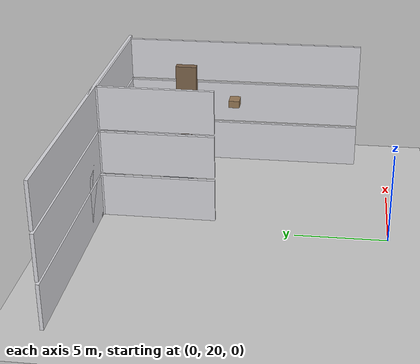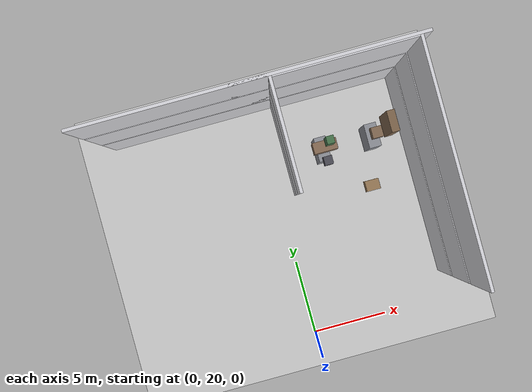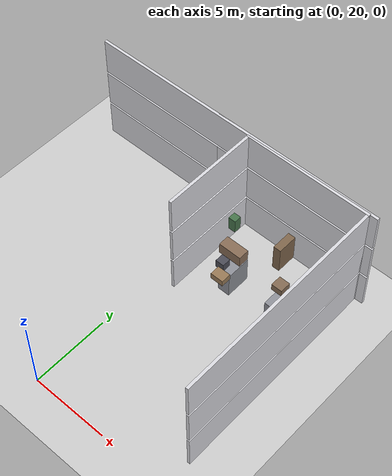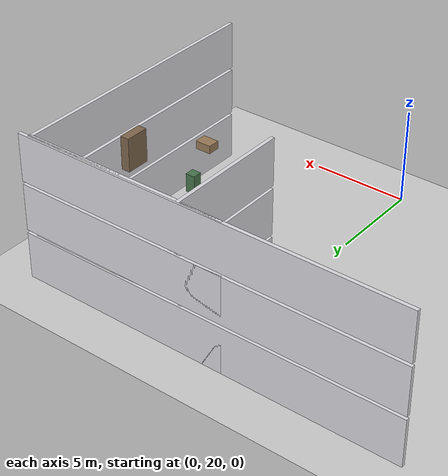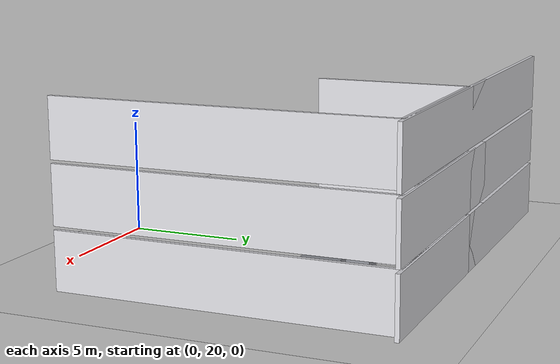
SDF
<sdf version="1.7">
 <world name="generated_world">
  <include><uri>model://sun</uri></include>
  <include><uri>model://ground_plane</uri></include>
  <model name="generated_building">
   <static>true</static>
   <link name="exterior_north_floor_0">
    <pose>0.0000 35.9100 1.2250 0.0000 0.0000 0.0000</pose>
    <collision name="exterior_north_floor_0_collision">
     <geometry><box><size>20.0000 0.1800 2.4500</size></box></geometry>
    </collision>
    <visual name="exterior_north_floor_0_visual">
     <geometry><box><size>20.0000 0.1800 2.4500</size></box></geometry>
     <material><ambient>0.86 0.86 0.88 1</ambient><diffuse>0.86 0.86 0.88 1</diffuse></material>
    </visual>
    <gravity>false</gravity>
   </link>
   <link name="north_end_wall_floor_0">
    <pose>0.0000 35.9100 1.2250 0.0000 0.0000 0.0000</pose>
    <collision name="north_end_wall_floor_0_collision">
     <geometry><box><size>2.2000 0.1800 2.4500</size></box></geometry>
    </collision>
    <visual name="north_end_wall_floor_0_visual">
     <geometry><box><size>2.2000 0.1800 2.4500</size></box></geometry>
     <material><ambient>0.86 0.86 0.88 1</ambient><diffuse>0.86 0.86 0.88 1</diffuse></material>
    </visual>
    <gravity>false</gravity>
   </link>
   <link name="floor_0_room_3_corridor_wall_upper">
    <pose>1.1900 32.7025 1.2250 0.0000 0.0000 0.0000</pose>
    <collision name="floor_0_room_3_corridor_wall_upper_collision">
     <geometry><box><size>0.1800 6.4150 2.4500</size></box></geometry>
    </collision>
    <visual name="floor_0_room_3_corridor_wall_upper_visual">
     <geometry><box><size>0.1800 6.4150 2.4500</size></box></geometry>
     <material><ambient>0.86 0.86 0.88 1</ambient><diffuse>0.86 0.86 0.88 1</diffuse></material>
    </visual>
    <gravity>false</gravity>
   </link>
   <link name="floor_0_room_3_east_wall">
    <pose>9.4100 28.8950 1.2250 0.0000 0.0000 0.0000</pose>
    <collision name="floor_0_room_3_east_wall_collision">
     <geometry><box><size>0.1800 14.0300 2.4500</size></box></geometry>
    </collision>
    <visual name="floor_0_room_3_east_wall_visual">
     <geometry><box><size>0.1800 14.0300 2.4500</size></box></geometry>
     <material><ambient>0.86 0.86 0.88 1</ambient><diffuse>0.86 0.86 0.88 1</diffuse></material>
    </visual>
    <gravity>false</gravity>
   </link>
   <link name="floor_0_room_3_north_wall">
    <pose>5.3000 35.8200 1.2250 0.0000 0.0000 0.0000</pose>
    <collision name="floor_0_room_3_north_wall_collision">
     <geometry><box><size>8.4000 0.1800 2.4500</size></box></geometry>
    </collision>
    <visual name="floor_0_room_3_north_wall_visual">
     <geometry><box><size>8.4000 0.1800 2.4500</size></box></geometry>
     <material><ambient>0.86 0.86 0.88 1</ambient><diffuse>0.86 0.86 0.88 1</diffuse></material>
    </visual>
    <gravity>false</gravity>
   </link>
   <link name="floor_0_room_3_rack_a">
    <pose>3.6000 31.9525 0.9000 0.0000 0.0000 0.0000</pose>
    <collision name="floor_0_room_3_rack_a_collision">
     <geometry><box><size>0.8000 1.6000 1.8000</size></box></geometry>
    </collision>
    <visual name="floor_0_room_3_rack_a_visual">
     <geometry><box><size>0.8000 1.6000 1.8000</size></box></geometry>
     <material><ambient>0.56 0.57 0.60 1</ambient><diffuse>0.56 0.57 0.60 1</diffuse></material>
    </visual>
    <gravity>false</gravity>
   </link>
   <link name="floor_0_room_3_rack_b">
    <pose>7.0000 31.9525 0.9000 0.0000 0.0000 0.0000</pose>
    <collision name="floor_0_room_3_rack_b_collision">
     <geometry><box><size>0.8000 1.6000 1.8000</size></box></geometry>
    </collision>
    <visual name="floor_0_room_3_rack_b_visual">
     <geometry><box><size>0.8000 1.6000 1.8000</size></box></geometry>
     <material><ambient>0.56 0.57 0.60 1</ambient><diffuse>0.56 0.57 0.60 1</diffuse></material>
    </visual>
    <gravity>false</gravity>
   </link>
   <link name="exterior_north_floor_1">
    <pose>0.0000 35.9100 3.8250 0.0000 0.0000 0.0000</pose>
    <collision name="exterior_north_floor_1_collision">
     <geometry><box><size>20.0000 0.1800 2.4500</size></box></geometry>
    </collision>
    <visual name="exterior_north_floor_1_visual">
     <geometry><box><size>20.0000 0.1800 2.4500</size></box></geometry>
     <material><ambient>0.86 0.86 0.88 1</ambient><diffuse>0.86 0.86 0.88 1</diffuse></material>
    </visual>
    <gravity>false</gravity>
   </link>
   <link name="north_end_wall_floor_1">
    <pose>0.0000 35.9100 3.8250 0.0000 0.0000 0.0000</pose>
    <collision name="north_end_wall_floor_1_collision">
     <geometry><box><size>2.2000 0.1800 2.4500</size></box></geometry>
    </collision>
    <visual name="north_end_wall_floor_1_visual">
     <geometry><box><size>2.2000 0.1800 2.4500</size></box></geometry>
     <material><ambient>0.86 0.86 0.88 1</ambient><diffuse>0.86 0.86 0.88 1</diffuse></material>
    </visual>
    <gravity>false</gravity>
   </link>
   <link name="floor_1_room_3_corridor_wall_upper">
    <pose>1.1900 32.7025 3.8250 0.0000 0.0000 0.0000</pose>
    <collision name="floor_1_room_3_corridor_wall_upper_collision">
     <geometry><box><size>0.1800 6.4150 2.4500</size></box></geometry>
    </collision>
    <visual name="floor_1_room_3_corridor_wall_upper_visual">
     <geometry><box><size>0.1800 6.4150 2.4500</size></box></geometry>
     <material><ambient>0.86 0.86 0.88 1</ambient><diffuse>0.86 0.86 0.88 1</diffuse></material>
    </visual>
    <gravity>false</gravity>
   </link>
   <link name="floor_1_room_3_east_wall">
    <pose>9.4100 28.8950 3.8250 0.0000 0.0000 0.0000</pose>
    <collision name="floor_1_room_3_east_wall_collision">
     <geometry><box><size>0.1800 14.0300 2.4500</size></box></geometry>
    </collision>
    <visual name="floor_1_room_3_east_wall_visual">
     <geometry><box><size>0.1800 14.0300 2.4500</size></box></geometry>
     <material><ambient>0.86 0.86 0.88 1</ambient><diffuse>0.86 0.86 0.88 1</diffuse></material>
    </visual>
    <gravity>false</gravity>
   </link>
   <link name="floor_1_room_3_north_wall">
    <pose>5.3000 35.8200 3.8250 0.0000 0.0000 0.0000</pose>
    <collision name="floor_1_room_3_north_wall_collision">
     <geometry><box><size>8.4000 0.1800 2.4500</size></box></geometry>
    </collision>
    <visual name="floor_1_room_3_north_wall_visual">
     <geometry><box><size>8.4000 0.1800 2.4500</size></box></geometry>
     <material><ambient>0.86 0.86 0.88 1</ambient><diffuse>0.86 0.86 0.88 1</diffuse></material>
    </visual>
    <gravity>false</gravity>
   </link>
   <link name="floor_1_room_3_desk">
    <pose>3.6000 31.9525 3.0500 0.0000 0.0000 0.0000</pose>
    <collision name="floor_1_room_3_desk_collision">
     <geometry><box><size>1.5000 0.7000 0.7500</size></box></geometry>
    </collision>
    <visual name="floor_1_room_3_desk_visual">
     <geometry><box><size>1.5000 0.7000 0.7500</size></box></geometry>
     <material><ambient>0.54 0.43 0.34 1</ambient><diffuse>0.54 0.43 0.34 1</diffuse></material>
    </visual>
    <gravity>false</gravity>
   </link>
   <link name="floor_1_room_3_chair">
    <pose>3.6000 31.0525 2.8800 0.0000 0.0000 0.0000</pose>
    <collision name="floor_1_room_3_chair_collision">
     <geometry><box><size>0.5500 0.5500 0.5500</size></box></geometry>
    </collision>
    <visual name="floor_1_room_3_chair_visual">
     <geometry><box><size>0.5500 0.5500 0.5500</size></box></geometry>
     <material><ambient>0.30 0.30 0.34 1</ambient><diffuse>0.30 0.30 0.34 1</diffuse></material>
    </visual>
    <gravity>false</gravity>
   </link>
   <link name="floor_1_room_3_side_table">
    <pose>7.0000 31.9525 2.9200 0.0000 0.0000 0.0000</pose>
    <collision name="floor_1_room_3_side_table_collision">
     <geometry><box><size>0.7000 0.7000 0.4500</size></box></geometry>
    </collision>
    <visual name="floor_1_room_3_side_table_visual">
     <geometry><box><size>0.7000 0.7000 0.4500</size></box></geometry>
     <material><ambient>0.52 0.42 0.33 1</ambient><diffuse>0.52 0.42 0.33 1</diffuse></material>
    </visual>
    <gravity>false</gravity>
   </link>
   <link name="exterior_north_floor_2">
    <pose>0.0000 35.9100 6.4250 0.0000 0.0000 0.0000</pose>
    <collision name="exterior_north_floor_2_collision">
     <geometry><box><size>20.0000 0.1800 2.4500</size></box></geometry>
    </collision>
    <visual name="exterior_north_floor_2_visual">
     <geometry><box><size>20.0000 0.1800 2.4500</size></box></geometry>
     <material><ambient>0.86 0.86 0.88 1</ambient><diffuse>0.86 0.86 0.88 1</diffuse></material>
    </visual>
    <gravity>false</gravity>
   </link>
   <link name="north_end_wall_floor_2">
    <pose>0.0000 35.9100 6.4250 0.0000 0.0000 0.0000</pose>
    <collision name="north_end_wall_floor_2_collision">
     <geometry><box><size>2.2000 0.1800 2.4500</size></box></geometry>
    </collision>
    <visual name="north_end_wall_floor_2_visual">
     <geometry><box><size>2.2000 0.1800 2.4500</size></box></geometry>
     <material><ambient>0.86 0.86 0.88 1</ambient><diffuse>0.86 0.86 0.88 1</diffuse></material>
    </visual>
    <gravity>false</gravity>
   </link>
   <link name="floor_2_room_3_corridor_wall_upper">
    <pose>1.1900 32.7025 6.4250 0.0000 0.0000 0.0000</pose>
    <collision name="floor_2_room_3_corridor_wall_upper_collision">
     <geometry><box><size>0.1800 6.4150 2.4500</size></box></geometry>
    </collision>
    <visual name="floor_2_room_3_corridor_wall_upper_visual">
     <geometry><box><size>0.1800 6.4150 2.4500</size></box></geometry>
     <material><ambient>0.86 0.86 0.88 1</ambient><diffuse>0.86 0.86 0.88 1</diffuse></material>
    </visual>
    <gravity>false</gravity>
   </link>
   <link name="floor_2_room_3_east_wall">
    <pose>9.4100 28.8950 6.4250 0.0000 0.0000 0.0000</pose>
    <collision name="floor_2_room_3_east_wall_collision">
     <geometry><box><size>0.1800 14.0300 2.4500</size></box></geometry>
    </collision>
    <visual name="floor_2_room_3_east_wall_visual">
     <geometry><box><size>0.1800 14.0300 2.4500</size></box></geometry>
     <material><ambient>0.86 0.86 0.88 1</ambient><diffuse>0.86 0.86 0.88 1</diffuse></material>
    </visual>
    <gravity>false</gravity>
   </link>
   <link name="floor_2_room_3_north_wall">
    <pose>5.3000 35.8200 6.4250 0.0000 0.0000 0.0000</pose>
    <collision name="floor_2_room_3_north_wall_collision">
     <geometry><box><size>8.4000 0.1800 2.4500</size></box></geometry>
    </collision>
    <visual name="floor_2_room_3_north_wall_visual">
     <geometry><box><size>8.4000 0.1800 2.4500</size></box></geometry>
     <material><ambient>0.86 0.86 0.88 1</ambient><diffuse>0.86 0.86 0.88 1</diffuse></material>
    </visual>
    <gravity>false</gravity>
   </link>
   <link name="floor_2_room_3_coffee_table">
    <pose>5.3000 28.8950 5.4500 0.0000 0.0000 0.0000</pose>
    <collision name="floor_2_room_3_coffee_table_collision">
     <geometry><box><size>0.8000 0.6000 0.4000</size></box></geometry>
    </collision>
    <visual name="floor_2_room_3_coffee_table_visual">
     <geometry><box><size>0.8000 0.6000 0.4000</size></box></geometry>
     <material><ambient>0.60 0.48 0.34 1</ambient><diffuse>0.60 0.48 0.34 1</diffuse></material>
    </visual>
    <gravity>false</gravity>
   </link>
   <link name="floor_2_room_3_bookshelf">
    <pose>7.0000 31.9525 6.0500 0.0000 0.0000 0.0000</pose>
    <collision name="floor_2_room_3_bookshelf_collision">
     <geometry><box><size>0.4500 1.2000 1.7000</size></box></geometry>
    </collision>
    <visual name="floor_2_room_3_bookshelf_visual">
     <geometry><box><size>0.4500 1.2000 1.7000</size></box></geometry>
     <material><ambient>0.50 0.40 0.30 1</ambient><diffuse>0.50 0.40 0.30 1</diffuse></material>
    </visual>
    <gravity>false</gravity>
   </link>
   <link name="floor_2_room_3_planter">
    <pose>3.6000 31.9525 5.6500 0.0000 0.0000 0.0000</pose>
    <collision name="floor_2_room_3_planter_collision">
     <geometry><box><size>0.4500 0.4500 0.9000</size></box></geometry>
    </collision>
    <visual name="floor_2_room_3_planter_visual">
     <geometry><box><size>0.4500 0.4500 0.9000</size></box></geometry>
     <material><ambient>0.28 0.46 0.30 1</ambient><diffuse>0.28 0.46 0.30 1</diffuse></material>
    </visual>
    <gravity>false</gravity>
   </link>
  </model>
 </world>
</sdf>
